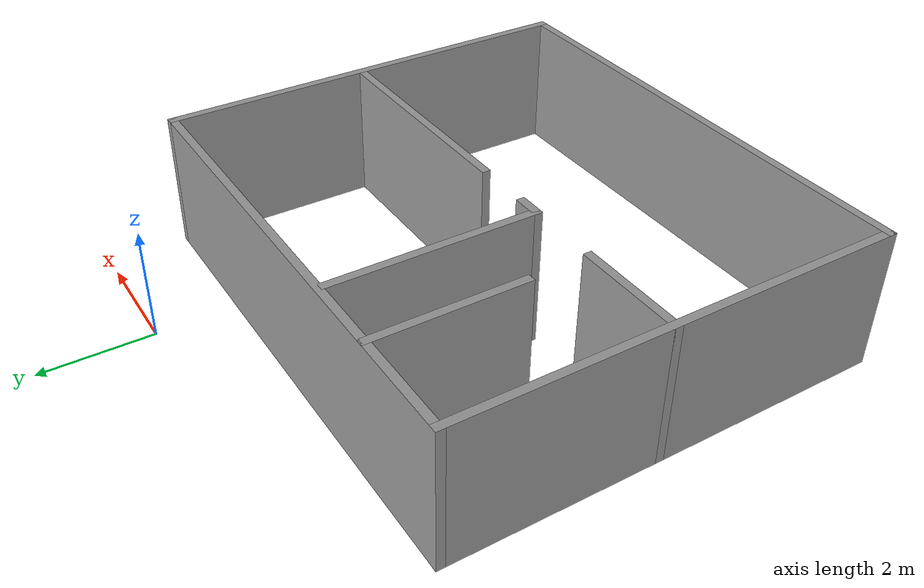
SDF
<sdf version="1.4">
 <world name="icra_onebedroom">
  <model name="one_bedroom">
   <pose>-2.08383 -5.43112 0 0 -0 0</pose>
   <link name="Wall_12">
    <collision name="Wall_12_Collision">
     <geometry><box><size>8 0.15 2.5</size></box></geometry>
     <pose>0 0 1.25 0 -0 0</pose>
    </collision>
    <visual name="Wall_12_Visual">
     <pose>0 0 1.25 0 -0 0</pose>
     <geometry><box><size>8 0.15 2.5</size></box></geometry>
     <material>
      <script><uri>file://media/materials/scripts/gazebo.material</uri><name>Gazebo/Grey</name></script>
      <ambient>1 1 1 1</ambient>
     </material>
    </visual>
    <pose>-4.425 -0 0 0 -0 -1.5708</pose>
   </link>
   <link name="Wall_13">
    <collision name="Wall_13_Collision">
     <geometry><box><size>9 0.15 2.5</size></box></geometry>
     <pose>0 0 1.25 0 -0 0</pose>
    </collision>
    <visual name="Wall_13_Visual">
     <pose>0 0 1.25 0 -0 0</pose>
     <geometry><box><size>9 0.15 2.5</size></box></geometry>
     <material>
      <script><uri>file://media/materials/scripts/gazebo.material</uri><name>Gazebo/Grey</name></script>
      <ambient>1 1 1 1</ambient>
     </material>
    </visual>
    <pose>-0 -3.925 0 0 -0 0</pose>
   </link>
   <link name="Wall_14">
    <collision name="Wall_14_Collision">
     <geometry><box><size>8 0.15 2.5</size></box></geometry>
     <pose>0 0 1.25 0 -0 0</pose>
    </collision>
    <visual name="Wall_14_Visual">
     <pose>0 0 1.25 0 -0 0</pose>
     <geometry><box><size>8 0.15 2.5</size></box></geometry>
     <material>
      <script><uri>file://media/materials/scripts/gazebo.material</uri><name>Gazebo/Grey</name></script>
      <ambient>1 1 1 1</ambient>
     </material>
    </visual>
    <pose>4.425 -0 0 0 -0 1.5708</pose>
   </link>
   <link name="Wall_15">
    <collision name="Wall_15_Collision">
     <geometry><box><size>9 0.15 2.5</size></box></geometry>
     <pose>0 0 1.25 0 -0 0</pose>
    </collision>
    <visual name="Wall_15_Visual">
     <pose>0 0 1.25 0 -0 0</pose>
     <geometry><box><size>9 0.15 2.5</size></box></geometry>
     <material>
      <script><uri>file://media/materials/scripts/gazebo.material</uri><name>Gazebo/Grey</name></script>
      <ambient>1 1 1 1</ambient>
     </material>
    </visual>
    <pose>-0 3.925 0 0 -0 3.14159</pose>
   </link>
   <link name="Wall_20">
    <collision name="Wall_20_Collision">
     <geometry><box><size>2 0.15 2.5</size></box></geometry>
     <pose>0 0 1.25 0 -0 0</pose>
    </collision>
    <visual name="Wall_20_Visual">
     <pose>0 0 1.25 0 -0 0</pose>
     <geometry><box><size>2 0.15 2.5</size></box></geometry>
     <material>
      <script><uri>file://media/materials/scripts/gazebo.material</uri><name>Gazebo/Grey</name></script>
      <ambient>1 1 1 1</ambient>
     </material>
    </visual>
    <pose>-3.5 0.225 0 0 -0 3.14159</pose>
   </link>
   <link name="Wall_23">
    <collision name="Wall_23_Collision">
     <geometry><box><size>3.75 0.15 2.5</size></box></geometry>
     <pose>0 0 1.25 0 -0 0</pose>
    </collision>
    <visual name="Wall_23_Visual">
     <pose>0 0 1.25 0 -0 0</pose>
     <geometry><box><size>3.75 0.15 2.5</size></box></geometry>
     <material>
      <script><uri>file://media/materials/scripts/gazebo.material</uri><name>Gazebo/Grey</name></script>
      <ambient>1 1 1 1</ambient>
     </material>
    </visual>
    <pose>-1.225 2.025 0 0 -0 1.5708</pose>
   </link>
   <link name="Wall_25">
    <collision name="Wall_25_Collision">
     <geometry><box><size>0.5 0.15 2.5</size></box></geometry>
     <pose>0 0 1.25 0 -0 0</pose>
    </collision>
    <visual name="Wall_25_Visual">
     <pose>0 0 1.25 0 -0 0</pose>
     <geometry><box><size>0.5 0.15 2.5</size></box></geometry>
     <material>
      <script><uri>file://media/materials/scripts/gazebo.material</uri><name>Gazebo/Grey</name></script>
      <ambient>1 1 1 1</ambient>
     </material>
    </visual>
    <pose>-1.05 0.225 0 0 -0 0</pose>
   </link>
   <link name="Wall_30">
    <collision name="Wall_30_Collision">
     <geometry><box><size>4.25 0.15 2.5</size></box></geometry>
     <pose>0 0 1.25 0 -0 0</pose>
    </collision>
    <visual name="Wall_30_Visual">
     <pose>0 0 1.25 0 -0 0</pose>
     <geometry><box><size>4.25 0.15 2.5</size></box></geometry>
     <material>
      <script><uri>file://media/materials/scripts/gazebo.material</uri><name>Gazebo/Grey</name></script>
      <ambient>1 1 1 1</ambient>
     </material>
    </visual>
    <pose>2.275 0.225 0 0 -0 0</pose>
   </link>
   <link name="Wall_34">
    <collision name="Wall_34_Collision">
     <geometry><box><size>2.75 0.15 2.5</size></box></geometry>
     <pose>0 0 1.25 0 -0 0</pose>
    </collision>
    <visual name="Wall_34_Visual">
     <pose>0 0 1.25 0 -0 0</pose>
     <geometry><box><size>2.75 0.15 2.5</size></box></geometry>
     <material>
      <script><uri>file://media/materials/scripts/gazebo.material</uri><name>Gazebo/Grey</name></script>
      <ambient>1 1 1 1</ambient>
     </material>
    </visual>
    <pose>-2.575 2.625 0 0 -0 1.5708</pose>
   </link>
   <static>1</static>
  </model>
 </world>
</sdf>
